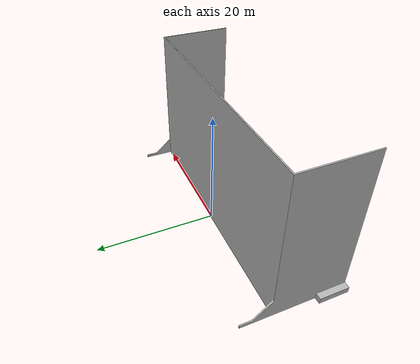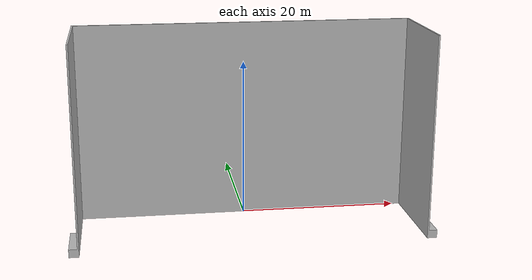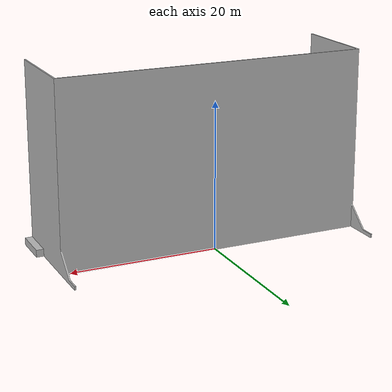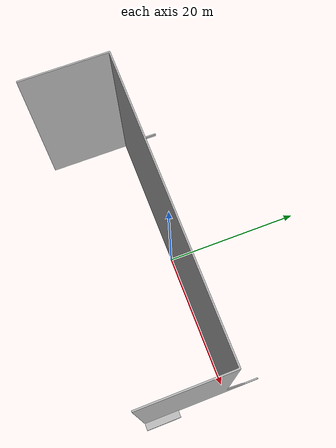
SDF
<?xml version='1.0'?>
<sdf version="1.4">
  <model name="my_model">
    <pose>0 0 0 0 0 0</pose>
    <static>false</static>
    <link name="link">

      <collision name="U_Wall_col">
        <geometry>
          <mesh>
          <uri>model://U-Wall_2/mashes/U-Wall_2.dae</uri>
	   <scale>1 1 1</scale>
          </mesh>
        </geometry>
      </collision>
      <visual name="visual">
        <geometry>
          <mesh>
          <uri>model://U-Wall_2/mashes/U-Wall_2.dae</uri>
	   <scale>1 1 1</scale>
          </mesh>
        </geometry>
      </visual>
    </link>
  </model>
</sdf>
